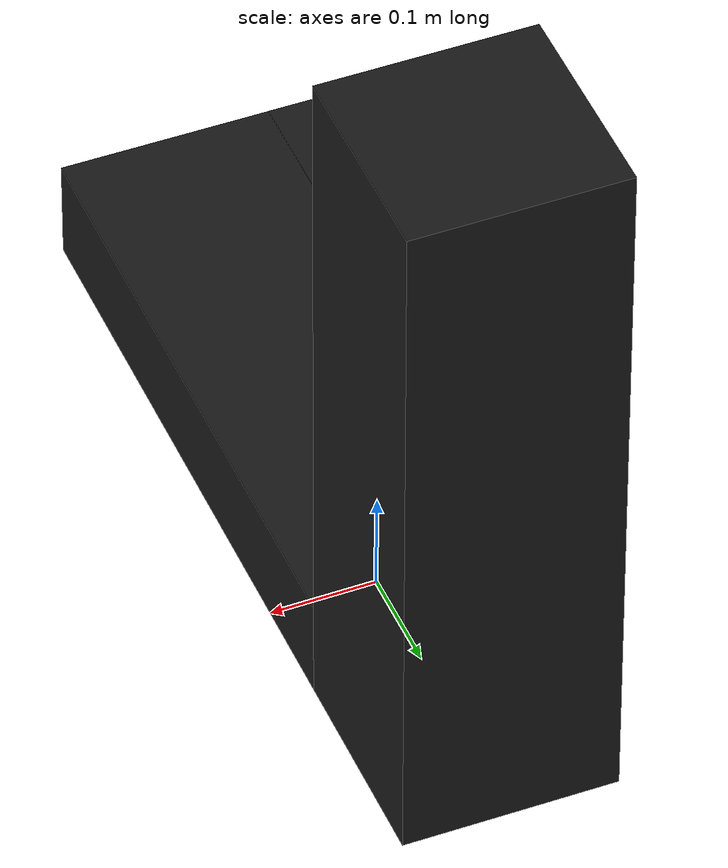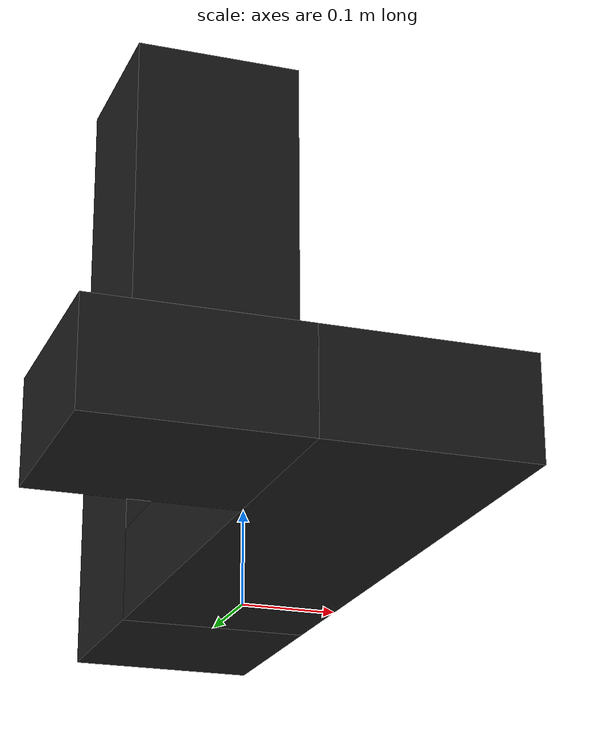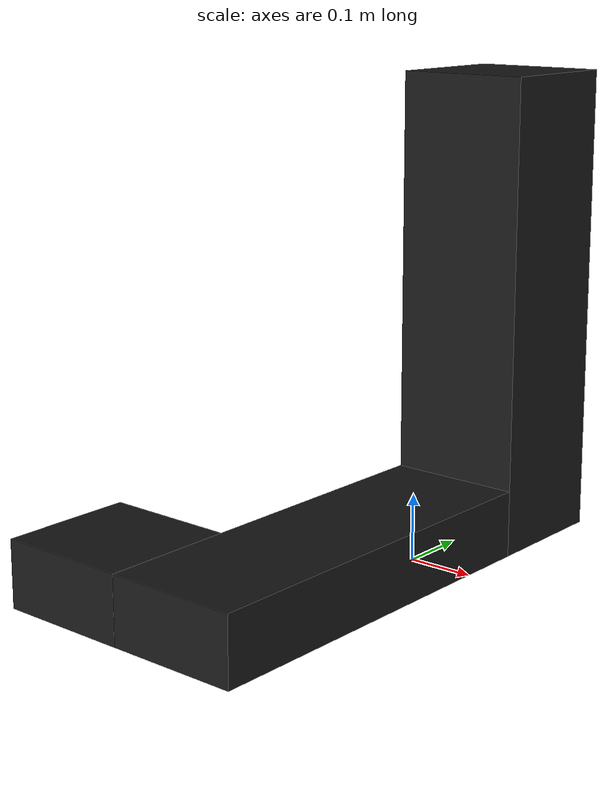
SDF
<?xml version='1.0'?>
<sdf version='1.6'>
  <model name='base'>
    <link name='link'>
      <inertial>
        <mass>91.2</mass>
        <inertia>
          <ixx>2.812</ixx>
          <ixy>0</ixy>
          <ixz>0</ixz>
          <iyy>0.38</iyy>
          <iyz>0</iyz>
          <izz>3.04</izz>
        </inertia>
        <pose frame=''>0 0 0 0 -0 0</pose>
      </inertial>
      <self_collide>0</self_collide>
      <enable_wind>0</enable_wind>
      <kinematic>0</kinematic>
      <pose frame=''>0 -0.2 0.05 0 -0 0</pose>
      <gravity>1</gravity>
      <visual name='visual'>
        <pose frame=''>0 0 0 0 -0 0</pose>
        <geometry>
          <box>
            <size>0.2 0.6 0.1</size>
          </box>
        </geometry>
        <material>
          <shader type='pixel'>
            <normal_map>__default__</normal_map>
          </shader>
          <script>
            <name>ModelPreview_1::link::visual_MATERIAL_ModelPreview_1::link::visual_MATERIAL_</name>
            <uri>__default__</uri>
          </script>
          <ambient>0.1 0.1 0.1 1</ambient>
          <diffuse>0.1 0.1 0.1 1</diffuse>
          <specular>0.1 0.1 0.1 1</specular>
          <emissive>0.1 0.1 0.1 1</emissive>
        </material>
        <transparency>0</transparency>
        <cast_shadows>1</cast_shadows>
      </visual>
      <collision name='collision'>
        <laser_retro>0</laser_retro>
        <max_contacts>10</max_contacts>
        <pose frame=''>0 0 0 0 -0 0</pose>
        <geometry>
          <box>
            <size>0.2 0.6 0.1</size>
          </box>
        </geometry>
        <surface>
          <friction>
            <ode>
              <mu>1</mu>
              <mu2>1</mu2>
              <fdir1>0 0 0</fdir1>
              <slip1>0</slip1>
              <slip2>0</slip2>
            </ode>
            <torsional>
              <coefficient>1</coefficient>
              <patch_radius>0</patch_radius>
              <surface_radius>0</surface_radius>
              <use_patch_radius>1</use_patch_radius>
              <ode>
                <slip>0</slip>
              </ode>
            </torsional>
          </friction>
          <bounce>
            <restitution_coefficient>0</restitution_coefficient>
            <threshold>1e+06</threshold>
          </bounce>
          <contact>
            <collide_without_contact>0</collide_without_contact>
            <collide_without_contact_bitmask>1</collide_without_contact_bitmask>
            <collide_bitmask>1</collide_bitmask>
            <ode>
              <soft_cfm>0</soft_cfm>
              <soft_erp>0.2</soft_erp>
              <kp>1e+13</kp>
              <kd>1</kd>
              <max_vel>0.01</max_vel>
              <min_depth>0</min_depth>
            </ode>
            <bullet>
              <split_impulse>1</split_impulse>
              <split_impulse_penetration_threshold>-0.01</split_impulse_penetration_threshold>
              <soft_cfm>0</soft_cfm>
              <soft_erp>0.2</soft_erp>
              <kp>1e+13</kp>
              <kd>1</kd>
            </bullet>
          </contact>
        </surface>
      </collision>
    </link>
    <link name='link_clone'>
      <inertial>
        <mass>212.8</mass>
        <inertia>
          <ixx>9.39867</ixx>
          <ixy>0</ixy>
          <ixz>0</ixz>
          <iyy>9.39867</iyy>
          <iyz>0</iyz>
          <izz>1.41867</izz>
        </inertia>
        <pose frame=''>0 0 0 0 -0 0</pose>
      </inertial>
      <self_collide>0</self_collide>
      <enable_wind>0</enable_wind>
      <kinematic>0</kinematic>
      <pose frame=''>0 0.2 0.35 0 -0 0</pose>
      <gravity>1</gravity>
      <visual name='visual'>
        <pose frame=''>0 0 0 0 -0 0</pose>
        <geometry>
          <box>
            <size>0.2 0.2 0.7</size>
          </box>
        </geometry>
        <material>
          <shader type='pixel'>
            <normal_map>__default__</normal_map>
          </shader>
          <script>
            <name>ModelPreview_1::link::visual_MATERIAL_ModelPreview_1::link::visual_MATERIAL_</name>
            <uri>__default__</uri>
          </script>
          <ambient>0.1 0.1 0.1 1</ambient>
          <diffuse>0.1 0.1 0.1 1</diffuse>
          <specular>0.1 0.1 0.1 1</specular>
          <emissive>0.1 0.1 0.1 1</emissive>
        </material>
        <transparency>0</transparency>
        <cast_shadows>1</cast_shadows>
      </visual>
      <collision name='collision'>
        <laser_retro>0</laser_retro>
        <max_contacts>10</max_contacts>
        <pose frame=''>0 0 0 0 -0 0</pose>
        <geometry>
          <box>
            <size>0.2 0.2 0.7</size>
          </box>
        </geometry>
        <surface>
          <friction>
            <ode>
              <mu>1</mu>
              <mu2>1</mu2>
              <fdir1>0 0 0</fdir1>
              <slip1>0</slip1>
              <slip2>0</slip2>
            </ode>
            <torsional>
              <coefficient>1</coefficient>
              <patch_radius>0</patch_radius>
              <surface_radius>0</surface_radius>
              <use_patch_radius>1</use_patch_radius>
              <ode>
                <slip>0</slip>
              </ode>
            </torsional>
          </friction>
          <bounce>
            <restitution_coefficient>0</restitution_coefficient>
            <threshold>1e+06</threshold>
          </bounce>
          <contact>
            <collide_without_contact>0</collide_without_contact>
            <collide_without_contact_bitmask>1</collide_without_contact_bitmask>
            <collide_bitmask>1</collide_bitmask>
            <ode>
              <soft_cfm>0</soft_cfm>
              <soft_erp>0.2</soft_erp>
              <kp>1e+13</kp>
              <kd>1</kd>
              <max_vel>0.01</max_vel>
              <min_depth>0</min_depth>
            </ode>
            <bullet>
              <split_impulse>1</split_impulse>
              <split_impulse_penetration_threshold>-0.01</split_impulse_penetration_threshold>
              <soft_cfm>0</soft_cfm>
              <soft_erp>0.2</soft_erp>
              <kp>1e+13</kp>
              <kd>1</kd>
            </bullet>
          </contact>
        </surface>
      </collision>
    </link>
    <link name='link_clone_clone'>
      <inertial>
        <mass>31.2</mass>
        <inertia>
          <ixx>0.13</ixx>
          <ixy>0</ixy>
          <ixz>0</ixz>
          <iyy>0.13</iyy>
          <iyz>0</iyz>
          <izz>0.208</izz>
        </inertia>
        <pose frame=''>0 0 0 0 -0 0</pose>
      </inertial>
      <self_collide>0</self_collide>
      <enable_wind>0</enable_wind>
      <kinematic>0</kinematic>
      <pose frame=''>-0.2 -0.4 0.05 -4e-06 -2e-06 -0.00141</pose>
      <gravity>1</gravity>
      <visual name='visual'>
        <pose frame=''>0 0 0 0 -0 0</pose>
        <geometry>
          <box>
            <size>0.2 0.2 0.1</size>
          </box>
        </geometry>
        <material>
          <shader type='pixel'>
            <normal_map>__default__</normal_map>
          </shader>
          <script>
            <name>ModelPreview_1::link::visual_MATERIAL_ModelPreview_1::link::visual_MATERIAL_</name>
            <uri>__default__</uri>
          </script>
          <ambient>0.1 0.1 0.1 1</ambient>
          <diffuse>0.1 0.1 0.1 1</diffuse>
          <specular>0.1 0.1 0.1 1</specular>
          <emissive>0.1 0.1 0.1 1</emissive>
        </material>
        <transparency>0</transparency>
        <cast_shadows>1</cast_shadows>
      </visual>
      <collision name='collision'>
        <laser_retro>0</laser_retro>
        <max_contacts>10</max_contacts>
        <pose frame=''>0 0 0 0 -0 0</pose>
        <geometry>
          <box>
            <size>0.2 0.2 0.1</size>
          </box>
        </geometry>
        <surface>
          <friction>
            <ode>
              <mu>1</mu>
              <mu2>1</mu2>
              <fdir1>0 0 0</fdir1>
              <slip1>0</slip1>
              <slip2>0</slip2>
            </ode>
            <torsional>
              <coefficient>1</coefficient>
              <patch_radius>0</patch_radius>
              <surface_radius>0</surface_radius>
              <use_patch_radius>1</use_patch_radius>
              <ode>
                <slip>0</slip>
              </ode>
            </torsional>
          </friction>
          <bounce>
            <restitution_coefficient>0</restitution_coefficient>
            <threshold>1e+06</threshold>
          </bounce>
          <contact>
            <collide_without_contact>0</collide_without_contact>
            <collide_without_contact_bitmask>1</collide_without_contact_bitmask>
            <collide_bitmask>1</collide_bitmask>
            <ode>
              <soft_cfm>0</soft_cfm>
              <soft_erp>0.2</soft_erp>
              <kp>1e+13</kp>
              <kd>1</kd>
              <max_vel>0.01</max_vel>
              <min_depth>0</min_depth>
            </ode>
            <bullet>
              <split_impulse>1</split_impulse>
              <split_impulse_penetration_threshold>-0.01</split_impulse_penetration_threshold>
              <soft_cfm>0</soft_cfm>
              <soft_erp>0.2</soft_erp>
              <kp>1e+13</kp>
              <kd>1</kd>
            </bullet>
          </contact>
        </surface>
      </collision>
    </link>
    <static>0</static>
    <allow_auto_disable>1</allow_auto_disable>
  </model>
</sdf>
